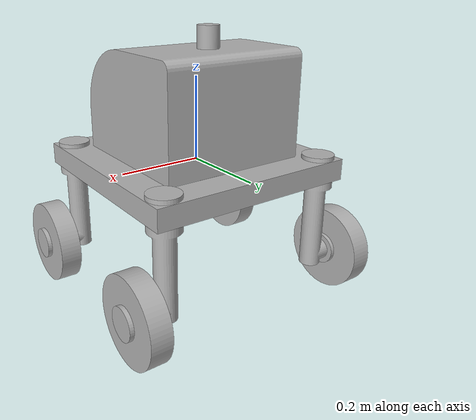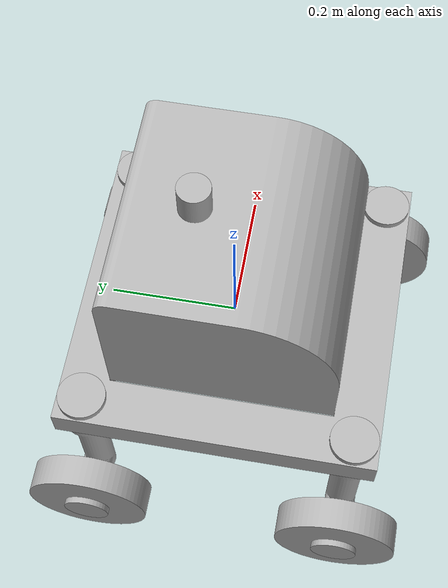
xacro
<?xml version="1.0" ?>
<robot name="robo" xmlns:xacro="http://www.ros.org/wiki/xacro">

<xacro:include filename="$(find robo_description)/urdf/materials.xacro" />
<xacro:include filename="$(find robo_description)/urdf/robo.trans" />
<xacro:include filename="$(find robo_description)/urdf/robo.gazebo" />
<link name="base_link">
  <inertial>
    <origin rpy="0 0 0" xyz="0.009671921470338535 -0.0009322500622724273 0.11385689924713777"/>
    <mass value="273.2247121461345"/>
    <inertia ixx="5.496076" ixy="-0.000352" ixz="-0.006208" iyy="5.665894" iyz="-0.21632" izz="7.284214"/>
  </inertial>
  <visual>
    <origin rpy="0 0 0" xyz="0 0 0"/>
    <geometry>
      <mesh filename="package://robo_description/meshes/base_link.stl" scale="0.001 0.001 0.001"/>
    </geometry>
    <material name="silver"/>
  </visual>
  <collision>
    <origin rpy="0 0 0" xyz="0 0 0"/>
    <geometry>
      <mesh filename="package://robo_description/meshes/base_link.stl" scale="0.001 0.001 0.001"/>
    </geometry>
  </collision>
</link>

<link name="Component2_1">
  <inertial>
    <origin rpy="0 0 0" xyz="0.01648762112221666 -4.531494608717157e-07 -0.10128244925370586"/>
    <mass value="6.570430599778692"/>
    <inertia ixx="0.054578" ixy="0.0" ixz="0.010152" iyy="0.060515" iyz="0.0" izz="0.008689"/>
  </inertial>
  <visual>
    <origin rpy="0 0 0" xyz="-0.219112 -0.202631 0.030814"/>
    <geometry>
      <mesh filename="package://robo_description/meshes/Component2_1.stl" scale="0.001 0.001 0.001"/>
    </geometry>
    <material name="silver"/>
  </visual>
  <collision>
    <origin rpy="0 0 0" xyz="-0.219112 -0.202631 0.030814"/>
    <geometry>
      <mesh filename="package://robo_description/meshes/Component2_1.stl" scale="0.001 0.001 0.001"/>
    </geometry>
  </collision>
</link>

<link name="Component2_2">
  <inertial>
    <origin rpy="0 0 0" xyz="0.016487621122216467 -1.312681151000028e-07 -0.10128244925370586"/>
    <mass value="6.570430599778692"/>
    <inertia ixx="0.054578" ixy="0.0" ixz="0.010152" iyy="0.060515" iyz="0.0" izz="0.008689"/>
  </inertial>
  <visual>
    <origin rpy="0 0 0" xyz="-0.219112 0.21808 0.030814"/>
    <geometry>
      <mesh filename="package://robo_description/meshes/Component2_2.stl" scale="0.001 0.001 0.001"/>
    </geometry>
    <material name="silver"/>
  </visual>
  <collision>
    <origin rpy="0 0 0" xyz="-0.219112 0.21808 0.030814"/>
    <geometry>
      <mesh filename="package://robo_description/meshes/Component2_2.stl" scale="0.001 0.001 0.001"/>
    </geometry>
  </collision>
</link>

<link name="Component2_3">
  <inertial>
    <origin rpy="0 0 0" xyz="-0.016487326801838564 -4.531494613158049e-07 -0.10128244925370564"/>
    <mass value="6.570430599778692"/>
    <inertia ixx="0.054578" ixy="-0.0" ixz="-0.010152" iyy="0.060515" iyz="-0.0" izz="0.008689"/>
  </inertial>
  <visual>
    <origin rpy="0 0 0" xyz="0.201598 -0.202631 0.030814"/>
    <geometry>
      <mesh filename="package://robo_description/meshes/Component2_3.stl" scale="0.001 0.001 0.001"/>
    </geometry>
    <material name="silver"/>
  </visual>
  <collision>
    <origin rpy="0 0 0" xyz="0.201598 -0.202631 0.030814"/>
    <geometry>
      <mesh filename="package://robo_description/meshes/Component2_3.stl" scale="0.001 0.001 0.001"/>
    </geometry>
  </collision>
</link>

<link name="Component2_4">
  <inertial>
    <origin rpy="0 0 0" xyz="-0.016487326801838342 -1.3126811546082529e-07 -0.10128244925370591"/>
    <mass value="6.570430599778692"/>
    <inertia ixx="0.054578" ixy="-0.0" ixz="-0.010152" iyy="0.060515" iyz="-0.0" izz="0.008689"/>
  </inertial>
  <visual>
    <origin rpy="0 0 0" xyz="0.201598 0.21808 0.030814"/>
    <geometry>
      <mesh filename="package://robo_description/meshes/Component2_4.stl" scale="0.001 0.001 0.001"/>
    </geometry>
    <material name="silver"/>
  </visual>
  <collision>
    <origin rpy="0 0 0" xyz="0.201598 0.21808 0.030814"/>
    <geometry>
      <mesh filename="package://robo_description/meshes/Component2_4.stl" scale="0.001 0.001 0.001"/>
    </geometry>
  </collision>
</link>

<link name="Component1_4">
  <inertial>
    <origin rpy="0 0 0" xyz="4.862195160382221e-07 -4.531494604276265e-07 -3.3835825002936915e-07"/>
    <mass value="11.56007921750619"/>
    <inertia ixx="0.061413" ixy="-0.0" ixz="0.0" iyy="0.033115" iyz="0.0" izz="0.033115"/>
  </inertial>
  <visual>
    <origin rpy="0 0 0" xyz="-0.289112 -0.202631 0.225814"/>
    <geometry>
      <mesh filename="package://robo_description/meshes/Component1_4.stl" scale="0.001 0.001 0.001"/>
    </geometry>
    <material name="silver"/>
  </visual>
  <collision>
    <origin rpy="0 0 0" xyz="-0.289112 -0.202631 0.225814"/>
    <geometry>
      <mesh filename="package://robo_description/meshes/Component1_4.stl" scale="0.001 0.001 0.001"/>
    </geometry>
  </collision>
</link>

<link name="Component1_2">
  <inertial>
    <origin rpy="0 0 0" xyz="4.862195159271998e-07 -1.312681141840688e-07 -3.3835825014039145e-07"/>
    <mass value="11.56007921750619"/>
    <inertia ixx="0.061413" ixy="0.0" ixz="0.0" iyy="0.033115" iyz="0.0" izz="0.033115"/>
  </inertial>
  <visual>
    <origin rpy="0 0 0" xyz="-0.289112 0.21808 0.225814"/>
    <geometry>
      <mesh filename="package://robo_description/meshes/Component1_2.stl" scale="0.001 0.001 0.001"/>
    </geometry>
    <material name="silver"/>
  </visual>
  <collision>
    <origin rpy="0 0 0" xyz="-0.289112 0.21808 0.225814"/>
    <geometry>
      <mesh filename="package://robo_description/meshes/Component1_2.stl" scale="0.001 0.001 0.001"/>
    </geometry>
  </collision>
</link>

<link name="Component1_3">
  <inertial>
    <origin rpy="0 0 0" xyz="-1.9189913819106508e-07 -4.531494618154053e-07 -3.383582498628357e-07"/>
    <mass value="11.56007921750619"/>
    <inertia ixx="0.061413" ixy="-0.0" ixz="0.0" iyy="0.033115" iyz="-0.0" izz="0.033115"/>
  </inertial>
  <visual>
    <origin rpy="0 0 0" xyz="0.271598 -0.202631 0.225814"/>
    <geometry>
      <mesh filename="package://robo_description/meshes/Component1_3.stl" scale="0.001 0.001 0.001"/>
    </geometry>
    <material name="silver"/>
  </visual>
  <collision>
    <origin rpy="0 0 0" xyz="0.271598 -0.202631 0.225814"/>
    <geometry>
      <mesh filename="package://robo_description/meshes/Component1_3.stl" scale="0.001 0.001 0.001"/>
    </geometry>
  </collision>
</link>

<link name="Component1_1">
  <inertial>
    <origin rpy="0 0 0" xyz="-1.9189913796902047e-07 -1.3126811584940334e-07 -3.3835825011263587e-07"/>
    <mass value="11.56007921750619"/>
    <inertia ixx="0.061413" ixy="0.0" ixz="0.0" iyy="0.033115" iyz="0.0" izz="0.033115"/>
  </inertial>
  <visual>
    <origin rpy="0 0 0" xyz="0.271598 0.21808 0.225814"/>
    <geometry>
      <mesh filename="package://robo_description/meshes/Component1_1.stl" scale="0.001 0.001 0.001"/>
    </geometry>
    <material name="silver"/>
  </visual>
  <collision>
    <origin rpy="0 0 0" xyz="0.271598 0.21808 0.225814"/>
    <geometry>
      <mesh filename="package://robo_description/meshes/Component1_1.stl" scale="0.001 0.001 0.001"/>
    </geometry>
  </collision>
</link>

<link name="laser_mount_1">
  <inertial>
    <origin rpy="0 0 0" xyz="-2.169531169802369e-07 1.3361638100117812e-07 0.02499966164174977"/>
    <mass value="0.7706719478337466"/>
    <inertia ixx="0.000281" ixy="0.0" ixz="0.0" iyy="0.000281" iyz="0.0" izz="0.000241"/>
  </inertial>
  <visual>
    <origin rpy="0 0 0" xyz="-0.009862 -0.057386 -0.269186"/>
    <geometry>
      <mesh filename="package://robo_description/meshes/laser_mount_1.stl" scale="0.001 0.001 0.001"/>
    </geometry>
    <material name="silver"/>
  </visual>
  <collision>
    <origin rpy="0 0 0" xyz="-0.009862 -0.057386 -0.269186"/>
    <geometry>
      <mesh filename="package://robo_description/meshes/laser_mount_1.stl" scale="0.001 0.001 0.001"/>
    </geometry>
  </collision>
</link>

<joint name="lbswirl" type="continuous">
  <origin rpy="0 0 0" xyz="0.219112 0.202631 -0.030814"/>
  <parent link="base_link"/>
  <child link="Component2_1"/>
  <axis xyz="-0.0 0.0 -1.0"/>
</joint>

<joint name="lfswirl" type="continuous">
  <origin rpy="0 0 0" xyz="0.219112 -0.21808 -0.030814"/>
  <parent link="base_link"/>
  <child link="Component2_2"/>
  <axis xyz="-0.0 0.0 -1.0"/>
</joint>

<joint name="rbswirl" type="continuous">
  <origin rpy="0 0 0" xyz="-0.201598 0.202631 -0.030814"/>
  <parent link="base_link"/>
  <child link="Component2_3"/>
  <axis xyz="-0.0 0.0 -1.0"/>
</joint>

<joint name="rfswirl" type="continuous">
  <origin rpy="0 0 0" xyz="-0.201598 -0.21808 -0.030814"/>
  <parent link="base_link"/>
  <child link="Component2_4"/>
  <axis xyz="-0.0 0.0 -1.0"/>
</joint>

<joint name="lbwheel" type="continuous">
  <origin rpy="0 0 0" xyz="0.07 0.0 -0.195"/>
  <parent link="Component2_1"/>
  <child link="Component1_4"/>
  <axis xyz="1.0 0.0 0.0"/>
</joint>

<joint name="lfwheel" type="continuous">
  <origin rpy="0 0 0" xyz="0.07 0.0 -0.195"/>
  <parent link="Component2_2"/>
  <child link="Component1_2"/>
  <axis xyz="1.0 0.0 0.0"/>
</joint>

<joint name="rbwheel" type="continuous">
  <origin rpy="0 0 0" xyz="-0.07 0.0 -0.195"/>
  <parent link="Component2_3"/>
  <child link="Component1_3"/>
  <axis xyz="1.0 -0.0 -0.0"/>
</joint>

<joint name="rfwheel" type="continuous">
  <origin rpy="0 0 0" xyz="-0.07 0.0 -0.195"/>
  <parent link="Component2_4"/>
  <child link="Component1_1"/>
  <axis xyz="1.0 -0.0 0.0"/>
</joint>

<joint name="laser_link" type="fixed">
  <origin rpy="0 0 -1.57079" xyz="0.009862 0.057386 0.269186"/>
  <parent link="base_link"/>
  <child link="laser_mount_1"/>
</joint>

</robot>

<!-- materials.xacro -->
<robot name="robo" xmlns:xacro="http://www.ros.org/wiki/xacro" >

<material name="silver">
  <color rgba="0.700 0.700 0.700 1.000"/>
</material>

</robot>

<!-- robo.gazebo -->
<robot name="robo" xmlns:xacro="http://www.ros.org/wiki/xacro" >

<xacro:property name="body_color" value="Gazebo/Red" />

<gazebo>
  <plugin name="gazebo_ros_control" filename="libgazebo_ros_control.so" >
  <robotNamespace>/robo</robotNamespace>
  <robotSimType>gazebo_ros_control/DefaultRobotHWSim</robotSimType>
  </plugin>
</gazebo>

<gazebo reference="laser_mount_1">
    <sensor type="ray" name="head_hokuyo_sensor">
      <pose>0 0 0.1 0 0 0</pose>
      <visualize>true</visualize>
      <update_rate>20</update_rate>
      <ray>
        <scan>
          <horizontal>
            <samples>720</samples>
            <resolution>1</resolution>
            <min_angle>-1.570796</min_angle>
            <max_angle>1.570796</max_angle>
          </horizontal>
        </scan>
        <range>
          <min>0.20</min>
          <max>10.0</max>
          <resolution>0.01</resolution>
        </range>
        <noise>
          <type>gaussian</type>
          <mean>0.0</mean>
          <stddev>0.01</stddev>
        </noise>
      </ray>
      <plugin name="gazebo_ros_head_hokuyo_controller" filename="libgazebo_ros_laser.so">
        <topicName>scan</topicName>
        <frameName>laser_mount_1</frameName>
      </plugin>
    </sensor>
  </gazebo>

<gazebo reference="base_link">
  <material>${body_color}</material>
  <mu1>0.2</mu1>
  <mu2>0.2</mu2>
  <selfCollide>true</selfCollide>
  <gravity>true</gravity>
</gazebo>

<gazebo reference="Component2_1">
  <material>${body_color}</material>
  <mu1>0.2</mu1>
  <mu2>0.2</mu2>
  <selfCollide>true</selfCollide>
</gazebo>

<gazebo reference="Component2_2">
  <material>${body_color}</material>
  <mu1>0.2</mu1>
  <mu2>0.2</mu2>
  <selfCollide>true</selfCollide>
</gazebo>

<gazebo reference="Component2_3">
  <material>${body_color}</material>
  <mu1>0.2</mu1>
  <mu2>0.2</mu2>
  <selfCollide>true</selfCollide>
</gazebo>

<gazebo reference="Component2_4">
  <material>${body_color}</material>
  <mu1>0.2</mu1>
  <mu2>0.2</mu2>
  <selfCollide>true</selfCollide>
</gazebo>

<gazebo reference="Component1_4">
  <material>${body_color}</material>
  <mu1>0.2</mu1>
  <mu2>0.2</mu2>
  <selfCollide>true</selfCollide>
</gazebo>

<gazebo reference="Component1_2">
  <material>${body_color}</material>
  <mu1>0.2</mu1>
  <mu2>0.2</mu2>
  <selfCollide>true</selfCollide>
</gazebo>

<gazebo reference="Component1_3">
  <material>${body_color}</material>
  <mu1>0.2</mu1>
  <mu2>0.2</mu2>
  <selfCollide>true</selfCollide>
</gazebo>

<gazebo reference="Component1_1">
  <material>${body_color}</material>
  <mu1>0.2</mu1>
  <mu2>0.2</mu2>
  <selfCollide>true</selfCollide>
</gazebo>

</robot>
